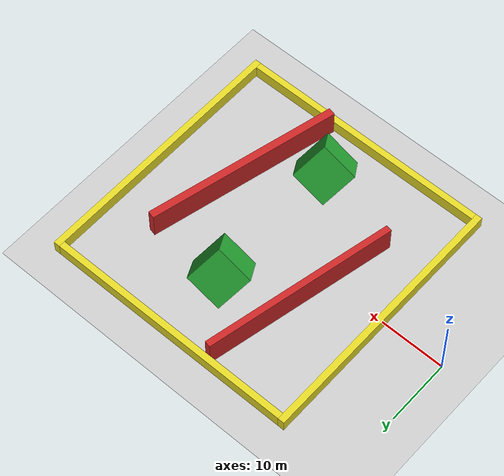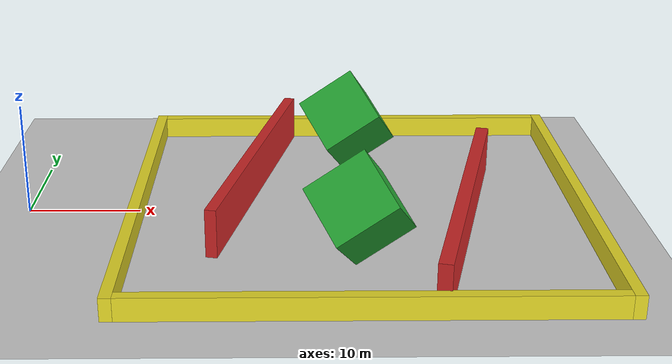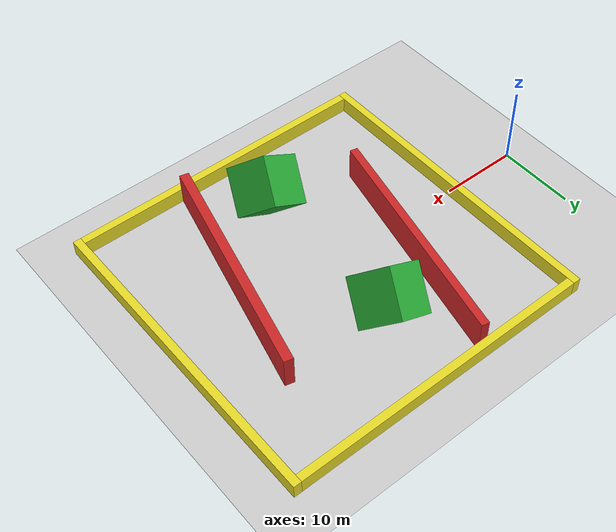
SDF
<sdf version="1.7">
 <world name="default">
  <light name="sun" type="directional">
   <pose>0 0 10 0 -0 0</pose>
   <diffuse>0.8 0.8 0.8 1</diffuse>
   <specular>0.1 0.1 0.1 1</specular>
   <attenuation>
    <range>1000</range>
    <constant>0.9</constant>
    <linear>0.01</linear>
    <quadratic>0.001</quadratic>
   </attenuation>
   <direction>-0.5 0.5 -1</direction>
   <spot><inner_angle>0</inner_angle><outer_angle>0</outer_angle><falloff>0</falloff></spot>
  </light>
  <model name="ground_plane">
   <static>1</static>
   <link name="link">
    <collision name="collision">
     <geometry><plane><normal>0 0 1</normal><size>300 300</size></plane></geometry>
     <surface><friction><ode><mu>100</mu><mu2>50</mu2></ode></friction></surface>
    </collision>
    <visual name="visual">
     <cast_shadows>0</cast_shadows>
     <geometry><plane><normal>0 0 1</normal><size>300 300</size></plane></geometry>
     <material>
      <script><uri>file://media/materials/scripts/gazebo.material</uri><name>Gazebo/Grey</name></script>
     </material>
    </visual>
   </link>
  </model>
  <gravity>0 0 -9.8</gravity>
  <magnetic_field>6e-06 2.3e-05 -4.2e-05</magnetic_field>
  <atmosphere type="adiabatic"/>
  <physics name="default_physics" default="0" type="ode">
   <max_step_size>0.001</max_step_size>
   <real_time_factor>1</real_time_factor>
   <real_time_update_rate>1000</real_time_update_rate>
  </physics>
  <scene><ambient>0.4 0.4 0.4 1</ambient><background>0.7 0.7 0.7 1</background><shadows>1</shadows></scene>
  <spherical_coordinates>
   <surface_model>EARTH_WGS84</surface_model>
   <latitude_deg>0</latitude_deg>
   <longitude_deg>0</longitude_deg>
   <elevation>0</elevation>
   <heading_deg>0</heading_deg>
  </spherical_coordinates>
  <model name="unit_box_0">
   <static>1</static>
   <pose>10 0 1 0 -0 0</pose>
   <link name="link">
    <inertial>
     <mass>1</mass>
     <inertia>
      <ixx>0.166667</ixx>
      <ixy>0</ixy>
      <ixz>0</ixz>
      <iyy>0.166667</iyy>
      <iyz>0</iyz>
      <izz>0.166667</izz>
     </inertia>
    </inertial>
    <collision name="collision"><geometry><box><size>1 41 2</size></box></geometry></collision>
    <visual name="visual">
     <geometry><box><size>1 41 2</size></box></geometry>
     <material>
      <script><name>Gazebo/Yellow</name><uri>file://media/materials/scripts/gazebo.material</uri></script>
     </material>
    </visual>
   </link>
  </model>
  <model name="unit_box_1">
   <static>1</static>
   <pose>30 -20 1 0 -0 0</pose>
   <link name="link">
    <inertial>
     <mass>1</mass>
     <inertia>
      <ixx>0.166667</ixx>
      <ixy>0</ixy>
      <ixz>0</ixz>
      <iyy>0.166667</iyy>
      <iyz>0</iyz>
      <izz>0.166667</izz>
     </inertia>
    </inertial>
    <collision name="collision"><geometry><box><size>39 1 2</size></box></geometry></collision>
    <visual name="visual">
     <geometry><box><size>39 1 2</size></box></geometry>
     <material>
      <script><name>Gazebo/Yellow</name><uri>file://media/materials/scripts/gazebo.material</uri></script>
     </material>
    </visual>
   </link>
  </model>
  <model name="unit_box_2">
   <static>1</static>
   <pose>50 0 1 0 -0 0</pose>
   <link name="link">
    <inertial>
     <mass>1</mass>
     <inertia>
      <ixx>0.166667</ixx>
      <ixy>0</ixy>
      <ixz>0</ixz>
      <iyy>0.166667</iyy>
      <iyz>0</iyz>
      <izz>0.166667</izz>
     </inertia>
    </inertial>
    <collision name="collision"><geometry><box><size>1 41 2</size></box></geometry></collision>
    <visual name="visual">
     <geometry><box><size>1 41 2</size></box></geometry>
     <material>
      <script><name>Gazebo/Yellow</name><uri>file://media/materials/scripts/gazebo.material</uri></script>
     </material>
    </visual>
   </link>
  </model>
  <model name="unit_box_3">
   <static>1</static>
   <pose>30 20 1 0 -0 0</pose>
   <link name="link">
    <inertial>
     <mass>1</mass>
     <inertia>
      <ixx>0.166667</ixx>
      <ixy>0</ixy>
      <ixz>0</ixz>
      <iyy>0.166667</iyy>
      <iyz>0</iyz>
      <izz>0.166667</izz>
     </inertia>
    </inertial>
    <collision name="collision"><geometry><box><size>39 1 2</size></box></geometry></collision>
    <visual name="visual">
     <geometry><box><size>39 1 2</size></box></geometry>
     <material>
      <script><name>Gazebo/Yellow</name><uri>file://media/materials/scripts/gazebo.material</uri></script>
     </material>
    </visual>
   </link>
  </model>
  <model name="unit_box_4">
   <static>1</static>
   <pose>20.3734 4.79579 2.15756 6e-06 -5e-06 1.35494</pose>
   <link name="link">
    <inertial>
     <mass>1</mass>
     <inertia>
      <ixx>0.166667</ixx>
      <ixy>0</ixy>
      <ixz>0</ixz>
      <iyy>0.166667</iyy>
      <iyz>0</iyz>
      <izz>0.166667</izz>
     </inertia>
    </inertial>
    <collision name="collision"><geometry><box><size>29.8277 1 4.31511</size></box></geometry></collision>
    <visual name="visual">
     <geometry><box><size>29.8277 1 4.31511</size></box></geometry>
     <material>
      <script><name>Gazebo/Red</name><uri>file://media/materials/scripts/gazebo.material</uri></script>
     </material>
    </visual>
   </link>
  </model>
  <model name="unit_box_5">
   <static>1</static>
   <pose>38.9811 -4.86449 2.12148 0.001499 -0.006141 1.3313</pose>
   <link name="link">
    <inertial>
     <mass>1</mass>
     <inertia>
      <ixx>0.166667</ixx>
      <ixy>0</ixy>
      <ixz>0</ixz>
      <iyy>0.166667</iyy>
      <iyz>0</iyz>
      <izz>0.166667</izz>
     </inertia>
    </inertial>
    <collision name="collision"><geometry><box><size>30.0977 1.18252 4.31511</size></box></geometry></collision>
    <visual name="visual">
     <geometry><box><size>30.0977 1.18252 4.31511</size></box></geometry>
     <material>
      <script><name>Gazebo/Red</name><uri>file://media/materials/scripts/gazebo.material</uri></script>
     </material>
    </visual>
   </link>
  </model>
  <model name="unit_box">
   <static>1</static>
   <pose>29.2709 10.2557 5.02482 2.31454 -0.657042 -1.96632</pose>
   <link name="link">
    <inertial>
     <mass>1</mass>
     <inertia>
      <ixx>0.166667</ixx>
      <ixy>0</ixy>
      <ixz>0</ixz>
      <iyy>0.166667</iyy>
      <iyz>0</iyz>
      <izz>0.166667</izz>
     </inertia>
    </inertial>
    <collision name="collision"><geometry><box><size>5.97111 5.78482 5.88222</size></box></geometry></collision>
    <visual name="visual">
     <geometry><box><size>5.97111 5.78482 5.88222</size></box></geometry>
     <material>
      <script><name>Gazebo/Green</name><uri>file://media/materials/scripts/gazebo.material</uri></script>
     </material>
    </visual>
   </link>
  </model>
  <model name="unit_box_clone">
   <static>1</static>
   <pose>29.451 -11.0495 5.02482 2.31454 -0.657042 -1.96632</pose>
   <link name="link">
    <inertial>
     <mass>1</mass>
     <inertia>
      <ixx>0.166667</ixx>
      <ixy>0</ixy>
      <ixz>0</ixz>
      <iyy>0.166667</iyy>
      <iyz>0</iyz>
      <izz>0.166667</izz>
     </inertia>
    </inertial>
    <collision name="collision"><geometry><box><size>5.97111 5.78482 5.88222</size></box></geometry></collision>
    <visual name="visual">
     <geometry><box><size>5.97111 5.78482 5.88222</size></box></geometry>
     <material>
      <script><name>Gazebo/Green</name><uri>file://media/materials/scripts/gazebo.material</uri></script>
     </material>
    </visual>
   </link>
  </model>
 </world>
</sdf>
